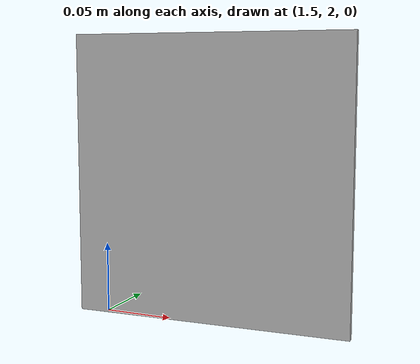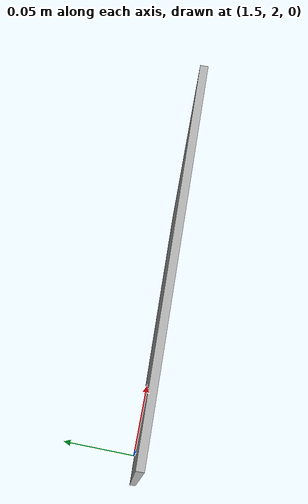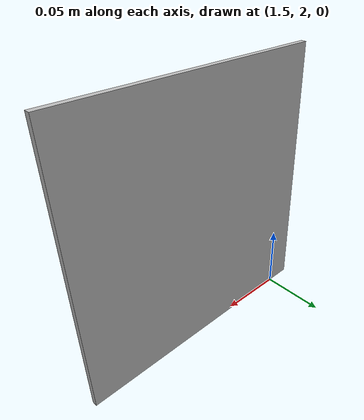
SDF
<?xml version="1.0" ?><sdf version="1.6">
  <model name="qr8">
    <static>true</static>
    <link name="link">
      <visual name="visual">
        <geometry>
          <mesh>
            <uri>model://qr8/meshes/qr8.dae</uri>
          <scale>0.4 0.4 0.4</scale></mesh>
        </geometry>
      </visual>
    </link>
    <pose>1.58 2 0 0 -0 1.6</pose>
  </model>
</sdf>
